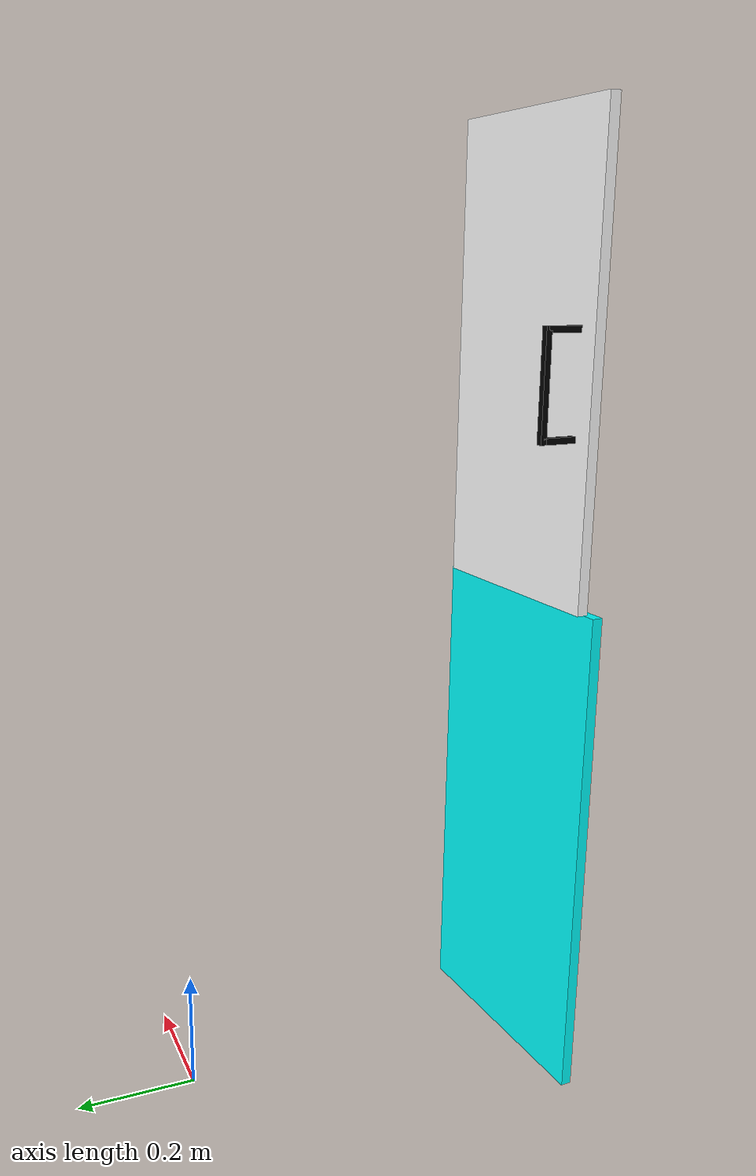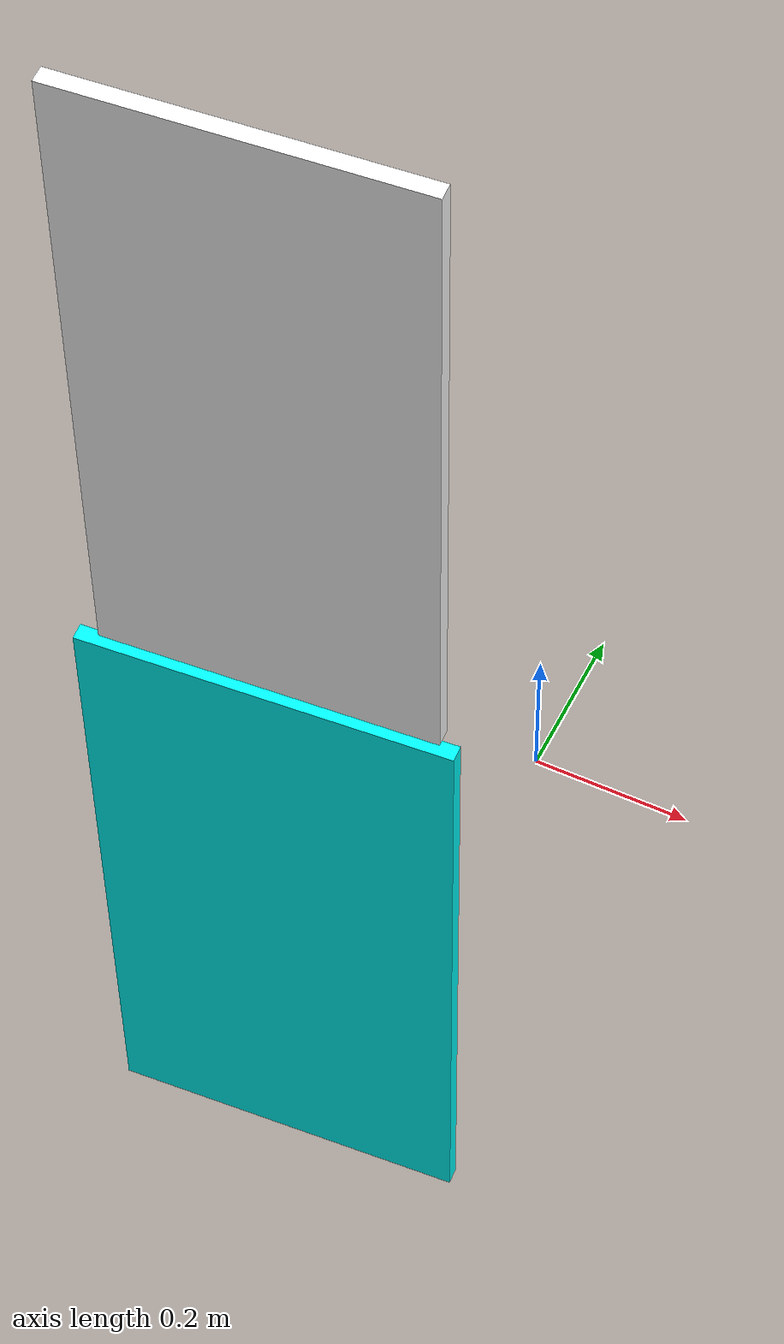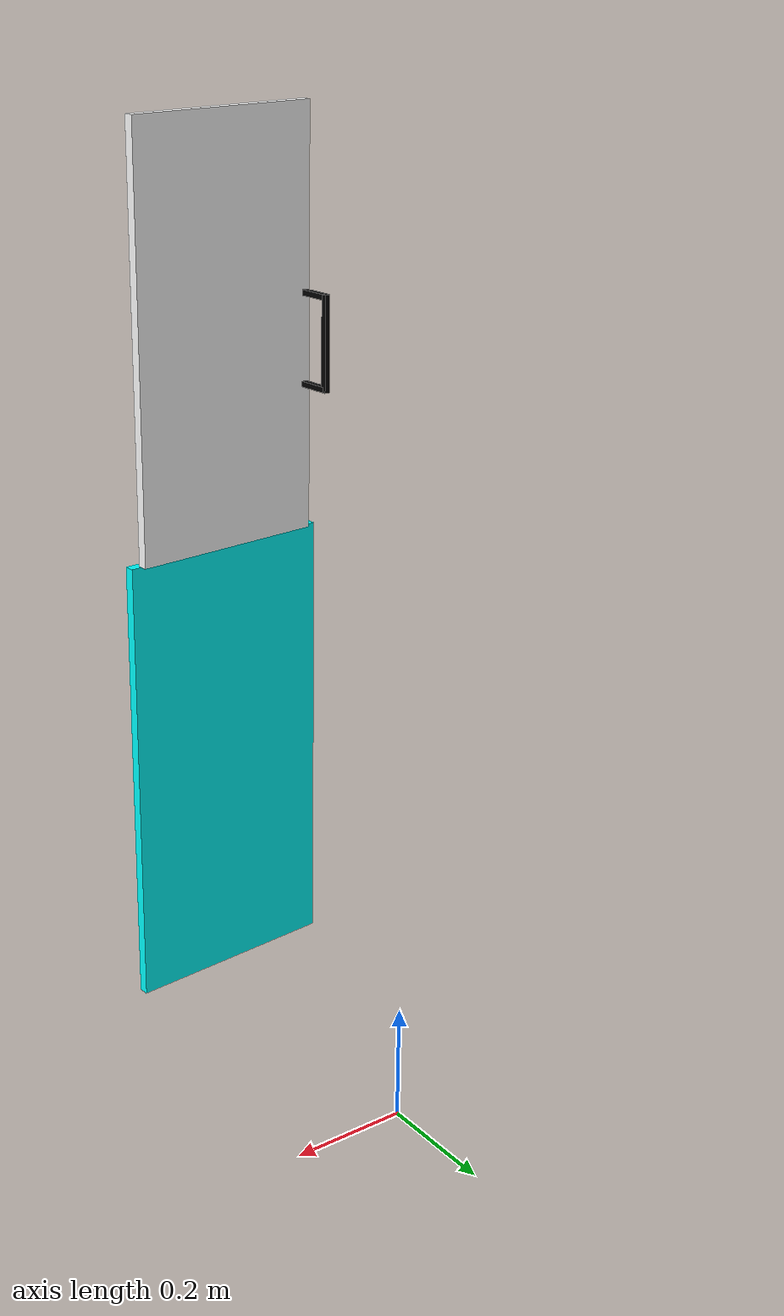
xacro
<?xml version="1.0" ?>
<robot name="shelf" xmlns:xacro="http://www.ros.org/wiki/xacro">
    <xacro:arg name="fixed" default="true"/>
    <xacro:arg name="height" default="0.0"/>
    <xacro:arg name="shelf_x" default="-0.242"/>
    <xacro:arg name="shelf_y" default="-0.595"/>
    <xacro:arg name="shelf_z" default="0.834"/>
    <xacro:arg name="shelf_orientation" default="0.0 0.0 1.645"/>

    <xacro:property name="height" default="$(arg height)"/>
    <xacro:property name="door_length" default="0.359"/>
    <xacro:property name="door_height" default="0.748"/>
    <xacro:property name="door_width" default="0.018"/>
    <xacro:property name="corpus_door_gap" default="0.004"/>
    <xacro:property name="corpus_length" default="0.4"/>
    <xacro:property name="corpus_height" default="0.827"/>
    <xacro:property name="corpus_width" default="0.018"/>
    <xacro:property name="handle_height" default="0.057"/>
    <xacro:property name="handle_length" default="0.16"/>
    <xacro:property name="handle_offset_y" default="0.338"/>
    <xacro:property name="handle_offset_z" default="-0.024"/>

    <xacro:property name="shelf_x" default="$(arg shelf_x)"/>
    <xacro:property name="shelf_y" default="$(arg shelf_y)"/>
    <xacro:property name="shelf_z" default="$(arg shelf_z)"/>
    <xacro:property name="shelf_orientation" default="$(arg shelf_orientation)"/>

    <xacro:macro name="box_inertia" params="m x y z">
        <inertial>
            <origin rpy="0 0 0" xyz="0 ${-y/2} 0"/>
            <mass value="${m}"/>
            <inertia ixx="${0.0833 * m * (y**2 + z**2)}"
                     ixy="0"
                     ixz="0"
                     iyy="${0.0833 * m * (x**2 + z**2)}"
                     iyz="0"
                     izz="${0.0833 * m * (x**2 + y**2)}"/>
        </inertial>
    </xacro:macro>

    <xacro:if value="$(arg fixed)">
        <link name="world"/>
        <joint name="fixed" type="fixed">
            <parent link="world"/>
            <child link="shelf"/>
            <origin xyz="${shelf_x} ${shelf_y} ${shelf_z}" rpy="${shelf_orientation}"/>
        </joint>
    </xacro:if>

    <gazebo>
        <plugin name="gazebo_ros_control" filename="libgazebo_ros_control.so">
            <robotNamespace>/shelf</robotNamespace>
            <robotParam>urdf_object </robotParam>
        </plugin>
    </gazebo>
    <link name="shelf">
        <xacro:box_inertia m="5" x="${corpus_width}" y="${corpus_length}" z="${shelf_z}"/>
        <visual>
            <origin rpy="0 0 0" xyz="0 -${corpus_length/2} ${-shelf_z/2}"/>
            <geometry>
                <box size="${corpus_width} ${corpus_length} ${shelf_z}"/>
            </geometry>
            <material name="shelf_material">
                <color rgba="0.0 1.0 1.0 1"/>
            </material>
        </visual>
    </link>

    <link name="door">
        <xacro:box_inertia m="3.0" x="${door_width}" y="${door_length}" z="${door_height}"/>
        <visual>
            <origin rpy="0 0 0" xyz="${-door_width/2} ${door_length/2} 0"/>
            <geometry>
                <box size="${door_width} ${door_length} ${door_height}"/>
            </geometry>
            <material name="door_material">
                <color rgba="1.0 1.0 1.0 1"/>
            </material>
        </visual>
        <collision>
            <origin rpy="0 0 0" xyz="0 ${door_length/2} 0"/>
            <geometry>
                <box size="${door_width} ${door_length} ${door_height}"/>
            </geometry>
            <material name="">
                <contact name="rubber"/>
            </material>
        </collision>
    </link>

    <link name="door_hinge">
        <inertial>
            <mass value="0.01"/>
            <origin rpy="0 0 0" xyz="0.0 0 0"/>
            <inertia ixx="0.0" ixy="0.0" ixz="0.0" iyy="0.0" iyz="0.0" izz="0.0"/>
        </inertial>
    </link>

    <joint name="door_hinge_joint" type="fixed">
        <parent link="shelf"/>
        <child link="door_hinge"/>
        <origin xyz="${door_width/2+0.012} -${door_length + corpus_width +corpus_door_gap} ${door_height/2}"/>
    </joint>

    <link name="axis_link">
        <inertial>
            <mass value="0.01"/>
            <origin rpy="0 0 0" xyz="0 0 0"/>
            <inertia ixx="0.0" ixy="0.0" ixz="0.0" iyy="0.0" iyz="0.0" izz="0.0"/>
        </inertial>
    </link>

    <joint name="axis_joint" type="fixed">
        <parent link="door_hinge"/>
        <child link="axis_link"/>
        <origin xyz="0.0 0.0 0.0"/>
    </joint>

    <joint name="articulation_joint" type="revolute">
        <parent link="axis_link"/>
        <child link="measured_joint_link"/>
        <dynamics damping="0.0" friction="0.0"/>
        <origin xyz="0 0 0"/>
        <axis xyz="0 0 -1"/>
        <limit effort="100" lower="0" upper="1.75" velocity="10.0"/>
    </joint>

    <joint name="door_link" type="fixed">
        <parent link="measured_joint_link"/>
        <child link="door"/>
        <origin xyz="0.0 0.0 0.0"/>
    </joint>

    <link name="handle_link">
        <inertial>
            <origin rpy="0 0 0" xyz="0 0 0"/>
            <mass value="0.1"/>
            <inertia ixx="0.001" ixy="0" ixz="0" iyy="0.001" iyz="0" izz="0.001"/>
        </inertial>
        <visual>
            <origin rpy="0 0 0" xyz="0 0 0"/>
            <geometry>
                <box size="0.01 0.01 ${handle_length+0.01}"/>
            </geometry>
            <material name="handle_material">
                <color rgba="0.0 0.0 0.0 1"/>
            </material>
        </visual>
        <collision>
            <origin rpy="0 0 0" xyz="0 0 0"/>
            <geometry>
                <box size="0.01 0.01 ${handle_length+0.01}"/>
            </geometry>
            <material name="">
                <contact name="rubber"/>
            </material>
        </collision>
    </link>

    <link name="handle_support_left">
        <inertial>
            <origin rpy="0 0 0" xyz="0 0 0"/>
            <mass value="0.1"/>
            <inertia ixx="0.001" ixy="0" ixz="0" iyy="0.001" iyz="0" izz="0.001"/>
        </inertial>
        <visual>
            <origin rpy="0 0 0" xyz="0 0 0"/>
            <geometry>
                <box size="${handle_height} 0.01 0.01"/>
            </geometry>
            <material name="handle_material">
                <color rgba="0.0 0.0 0.0 1"/>
            </material>
        </visual>
        <collision>
            <origin rpy="0 0 0" xyz="0 0 0"/>
            <geometry>
                <box size="${handle_height} 0.01 0.01"/>
            </geometry>
            <material name="">
                <contact name="rubber"/>
            </material>
        </collision>
    </link>

    <link name="handle_support_right">
        <inertial>
            <origin rpy="0 0 0" xyz="0 0 0"/>
            <mass value="0.1"/>
            <inertia ixx="0.001" ixy="0" ixz="0" iyy="0.001" iyz="0" izz="0.001"/>
        </inertial>
        <visual>
            <origin rpy="0 0 0" xyz="0 0 0"/>
            <geometry>
                <box size="${handle_height} 0.01 0.01"/>
            </geometry>
            <material name="handle_material">
                <color rgba="0.0 0.0 0.0 1"/>
            </material>
        </visual>
        <collision>
            <origin rpy="0 0 0" xyz="0 0 0"/>
            <geometry>
                <box size="${handle_height} 0.01 0.01"/>
            </geometry>
            <material name="">
                <contact name="rubber"/>
            </material>
        </collision>
    </link>

    <joint name="handle_joint" type="fixed">
        <parent link="door"/>
        <child link="handle_link"/>
        <origin xyz="${handle_height + 0.012} ${handle_offset_y} ${handle_offset_z}"
                rpy="0 0 0"/> <!-- height handle + half the width door, 0.30 minus some offset -->
    </joint>

    <joint name="handle_ref" type="fixed">
        <parent link="handle_link"/>
        <child link="handle_ref"/>
        <origin xyz="${-handle_height/2-0.012} 0 0"
                rpy="0 0 0"/> <!-- height handle + half the width door, 0.30 minus some offset -->
    </joint>

    <link name="handle_ref">
        <inertial>
            <mass value="0.01"/>
            <origin rpy="0 0 0" xyz="0 0 0"/>
            <inertia ixx="0.0" ixy="0.0" ixz="0.0" iyy="0.0" iyz="0.0" izz="0.0"/>
        </inertial>
    </link>

    <joint name="handle_support_left_joint" type="fixed">
        <parent link="handle_link"/>
        <child link="handle_support_left"/>
        <origin xyz="-${handle_height/2} 0 -${handle_length/2}" rpy="0 0 0"/>
    </joint>

    <joint name="handle_support_right_joint" type="fixed">
        <parent link="handle_link"/>
        <child link="handle_support_right"/>
        <origin xyz="-${handle_height/2} 0 ${handle_length/2}" rpy="0 0 0"/>
    </joint>

    <link name="measured_joint_link">
        <inertial>
            <mass value="0.01"/>
            <origin rpy="0 0 0" xyz="0 0 0"/>
            <inertia ixx="0.0" ixy="0.0" ixz="0.0" iyy="0.0" iyz="0.0" izz="0.0"/>
        </inertial>
    </link>

    <link name="measured_joint_link_test">
        <inertial>
            <mass value="0.01"/>
            <origin rpy="0 0 0" xyz="0 0 0"/>
            <inertia ixx="0.0" ixy="0.0" ixz="0.0" iyy="0.0" iyz="0.0" izz="0.0"/>
        </inertial>
    </link>
    <joint name="measured_test_handle_joint" type="fixed">
        <parent link="handle_link"/>
        <child link="measured_joint_link_test"/>
        <origin xyz="-0.06 -0.243 0.0" rpy="0 0 0"/>
    </joint>

    <transmission name="hinge">
        <type>transmission_interface/SimpleTransmission</type>
        <joint name="articulation_joint">
            <hardwareInterface>hardware_interface/EffortJointInterface</hardwareInterface>
        </joint>
        <actuator name="motor1">
            <hardwareInterface>hardware_interface/EffortJointInterface</hardwareInterface>
            <mechanicalReduction>1</mechanicalReduction>
        </actuator>
    </transmission>

</robot>
